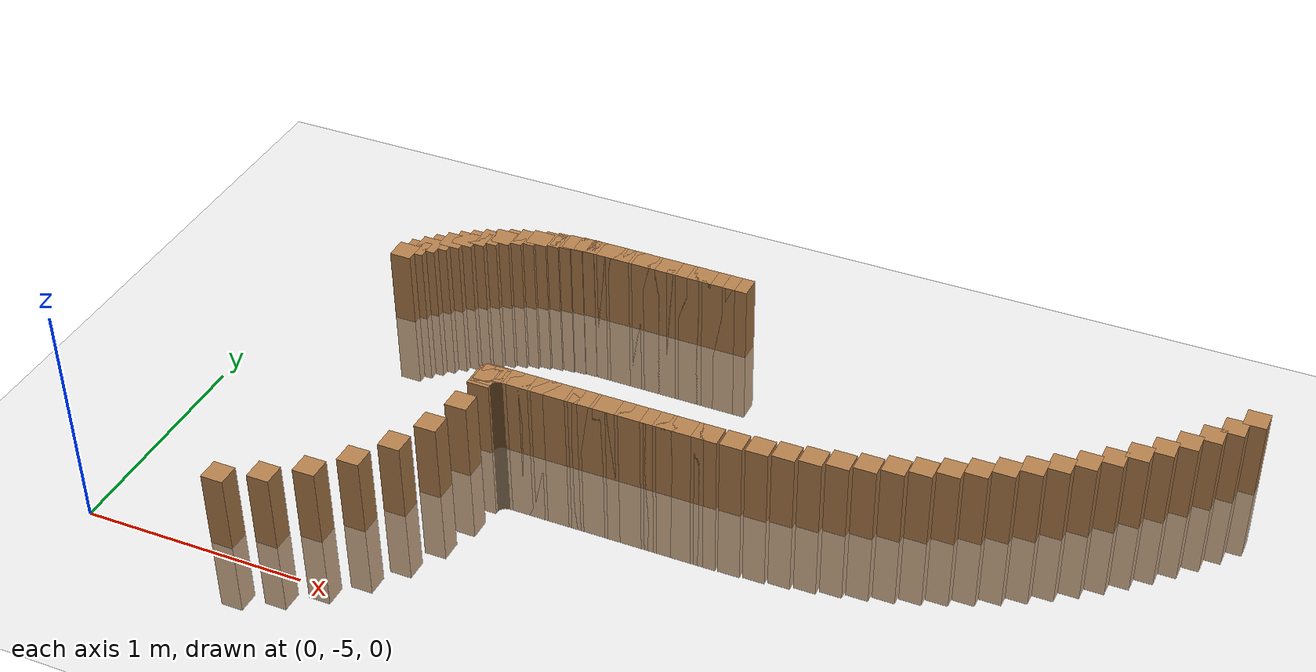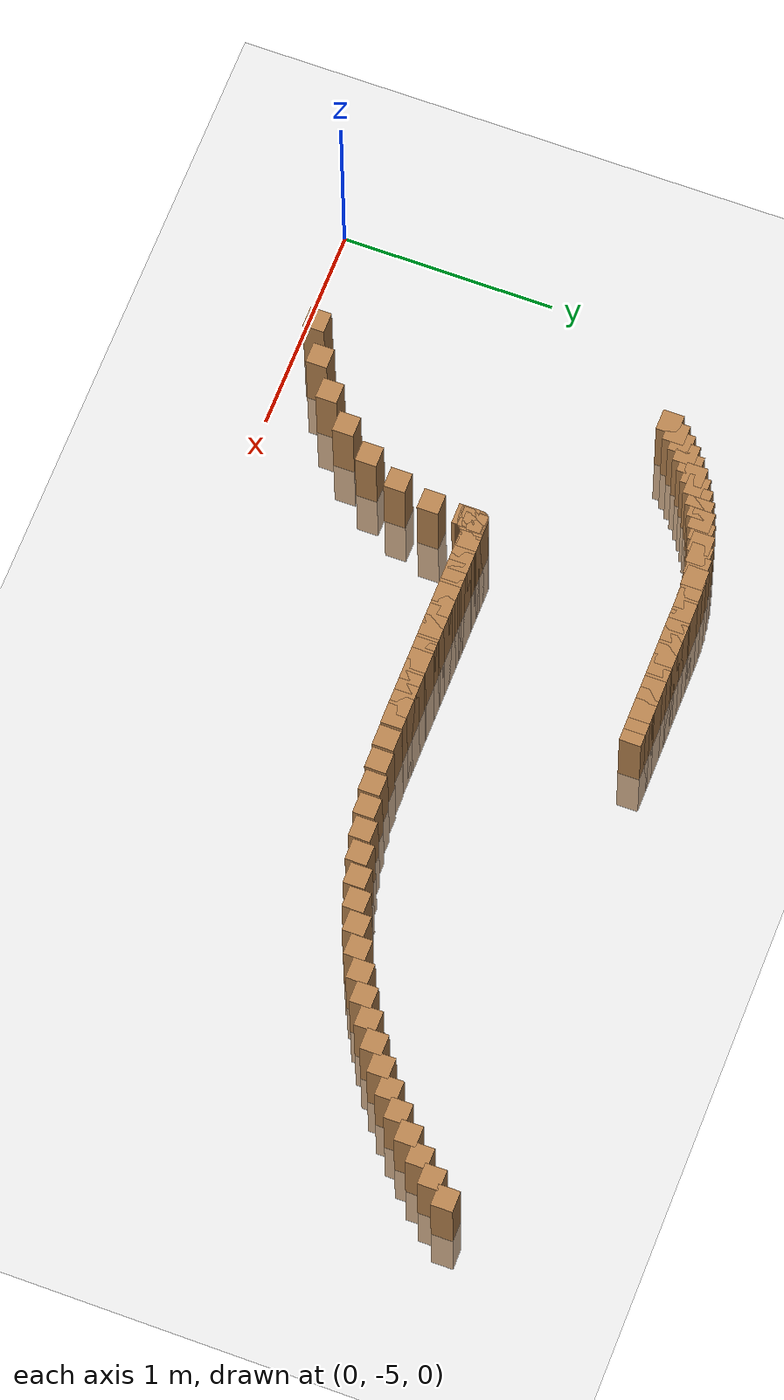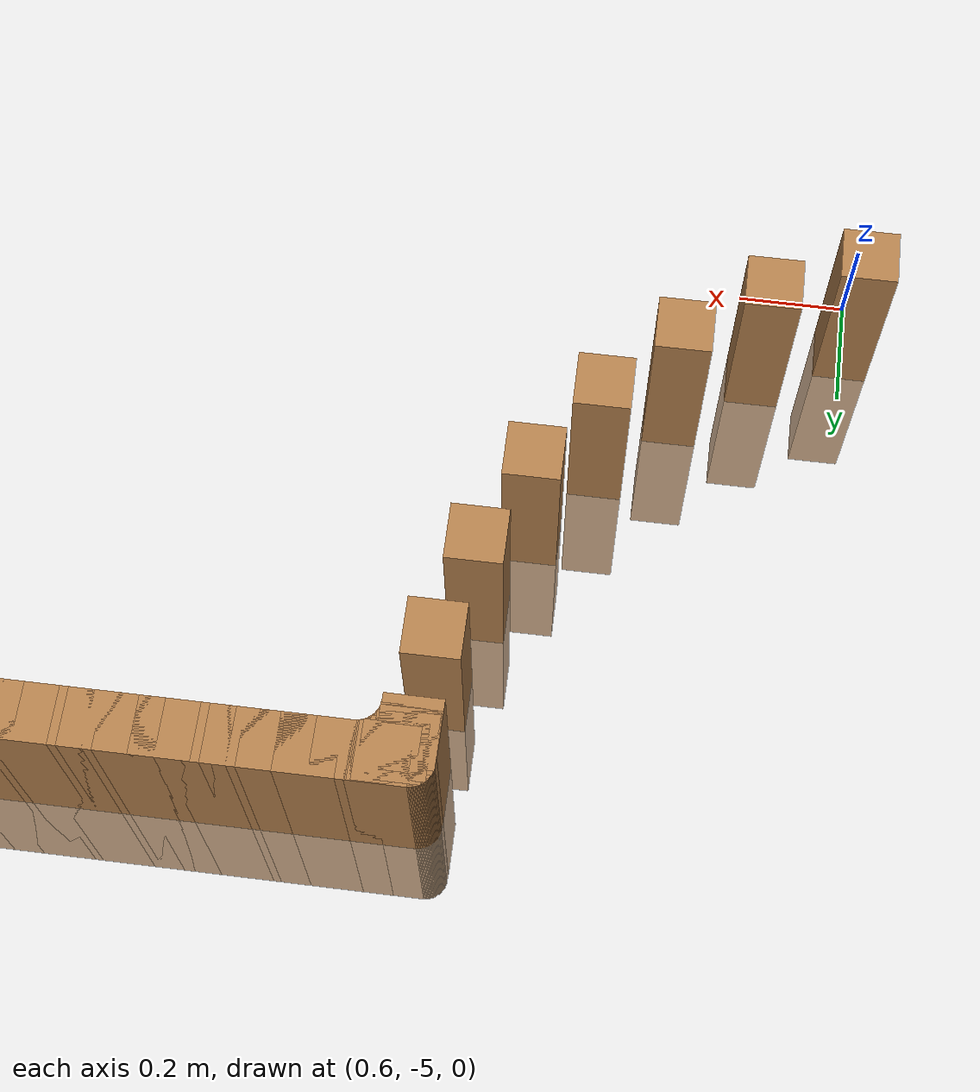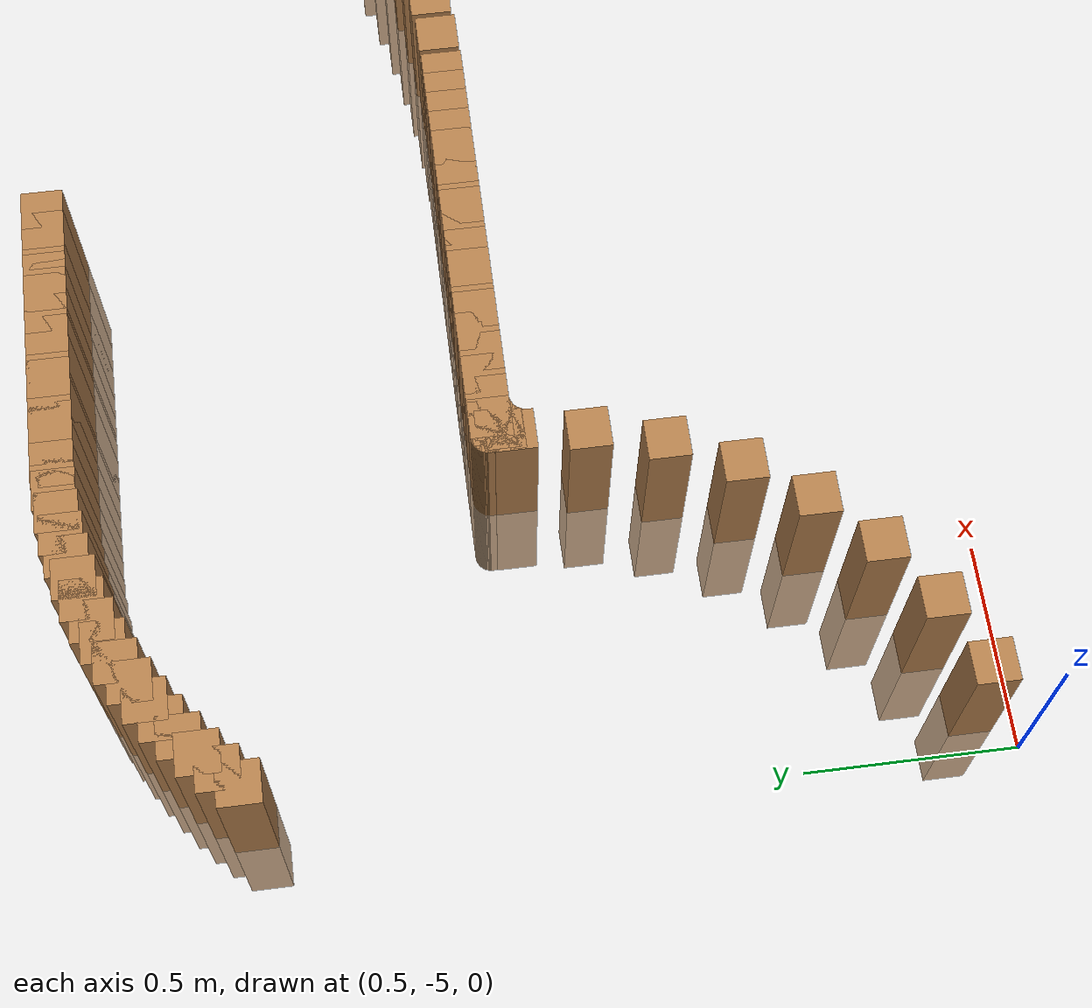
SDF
<sdf version="1.6">
 <world name="default">
  <model name="ground_plane">
   <static>1</static>
   <link name="link">
    <collision name="collision">
     <geometry><plane><normal>0 0 1</normal><size>100 100</size></plane></geometry>
     <surface><friction><ode><mu>100</mu><mu2>50</mu2></ode></friction></surface>
    </collision>
    <visual name="visual">
     <cast_shadows>0</cast_shadows>
     <geometry><plane><normal>0 0 1</normal><size>100 100</size></plane></geometry>
     <material>
      <script><uri>file://media/materials/scripts/gazebo.material</uri><name>Gazebo/Grey</name></script>
     </material>
    </visual>
   </link>
  </model>
  <model name="track">
   <link name="inner_464">
    <pose>0.531264 -3.245287 0.000000 0 -0 0</pose>
    <collision name="collision"><geometry><box><size>0.1 0.1 0.7</size></box></geometry></collision>
    <visual name="visual">
     <geometry><box><size>0.1 0.1 0.7</size></box></geometry>
     <material>
      <script><uri>file://media/materials/scripts/gazebo.material</uri><name>Gazebo/Wood</name></script>
     </material>
    </visual>
   </link>
   <link name="inner_465">
    <pose>0.568897 -3.203340 0.000000 0 -0 0</pose>
    <collision name="collision"><geometry><box><size>0.1 0.1 0.7</size></box></geometry></collision>
    <visual name="visual">
     <geometry><box><size>0.1 0.1 0.7</size></box></geometry>
     <material>
      <script><uri>file://media/materials/scripts/gazebo.material</uri><name>Gazebo/Wood</name></script>
     </material>
    </visual>
   </link>
   <link name="inner_466">
    <pose>0.608745 -3.163491 0.000000 0 -0 0</pose>
    <collision name="collision"><geometry><box><size>0.1 0.1 0.7</size></box></geometry></collision>
    <visual name="visual">
     <geometry><box><size>0.1 0.1 0.7</size></box></geometry>
     <material>
      <script><uri>file://media/materials/scripts/gazebo.material</uri><name>Gazebo/Wood</name></script>
     </material>
    </visual>
   </link>
   <link name="inner_467">
    <pose>0.650693 -3.125858 0.000000 0 -0 0</pose>
    <collision name="collision"><geometry><box><size>0.1 0.1 0.7</size></box></geometry></collision>
    <visual name="visual">
     <geometry><box><size>0.1 0.1 0.7</size></box></geometry>
     <material>
      <script><uri>file://media/materials/scripts/gazebo.material</uri><name>Gazebo/Wood</name></script>
     </material>
    </visual>
   </link>
   <link name="inner_468">
    <pose>0.694616 -3.090552 0.000000 0 -0 0</pose>
    <collision name="collision"><geometry><box><size>0.1 0.1 0.7</size></box></geometry></collision>
    <visual name="visual">
     <geometry><box><size>0.1 0.1 0.7</size></box></geometry>
     <material>
      <script><uri>file://media/materials/scripts/gazebo.material</uri><name>Gazebo/Wood</name></script>
     </material>
    </visual>
   </link>
   <link name="inner_469">
    <pose>0.740386 -3.057675 0.000000 0 -0 0</pose>
    <collision name="collision"><geometry><box><size>0.1 0.1 0.7</size></box></geometry></collision>
    <visual name="visual">
     <geometry><box><size>0.1 0.1 0.7</size></box></geometry>
     <material>
      <script><uri>file://media/materials/scripts/gazebo.material</uri><name>Gazebo/Wood</name></script>
     </material>
    </visual>
   </link>
   <link name="inner_470">
    <pose>0.787870 -3.027324 0.000000 0 -0 0</pose>
    <collision name="collision"><geometry><box><size>0.1 0.1 0.7</size></box></geometry></collision>
    <visual name="visual">
     <geometry><box><size>0.1 0.1 0.7</size></box></geometry>
     <material>
      <script><uri>file://media/materials/scripts/gazebo.material</uri><name>Gazebo/Wood</name></script>
     </material>
    </visual>
   </link>
   <link name="inner_471">
    <pose>0.836926 -2.999589 0.000000 0 -0 0</pose>
    <collision name="collision"><geometry><box><size>0.1 0.1 0.7</size></box></geometry></collision>
    <visual name="visual">
     <geometry><box><size>0.1 0.1 0.7</size></box></geometry>
     <material>
      <script><uri>file://media/materials/scripts/gazebo.material</uri><name>Gazebo/Wood</name></script>
     </material>
    </visual>
   </link>
   <link name="inner_472">
    <pose>0.887413 -2.974550 0.000000 0 -0 0</pose>
    <collision name="collision"><geometry><box><size>0.1 0.1 0.7</size></box></geometry></collision>
    <visual name="visual">
     <geometry><box><size>0.1 0.1 0.7</size></box></geometry>
     <material>
      <script><uri>file://media/materials/scripts/gazebo.material</uri><name>Gazebo/Wood</name></script>
     </material>
    </visual>
   </link>
   <link name="inner_473">
    <pose>0.939181 -2.952281 0.000000 0 -0 0</pose>
    <collision name="collision"><geometry><box><size>0.1 0.1 0.7</size></box></geometry></collision>
    <visual name="visual">
     <geometry><box><size>0.1 0.1 0.7</size></box></geometry>
     <material>
      <script><uri>file://media/materials/scripts/gazebo.material</uri><name>Gazebo/Wood</name></script>
     </material>
    </visual>
   </link>
   <link name="inner_474">
    <pose>0.992078 -2.932847 0.000000 0 -0 0</pose>
    <collision name="collision"><geometry><box><size>0.1 0.1 0.7</size></box></geometry></collision>
    <visual name="visual">
     <geometry><box><size>0.1 0.1 0.7</size></box></geometry>
     <material>
      <script><uri>file://media/materials/scripts/gazebo.material</uri><name>Gazebo/Wood</name></script>
     </material>
    </visual>
   </link>
   <link name="inner_475">
    <pose>1.045950 -2.916306 0.000000 0 -0 0</pose>
    <collision name="collision"><geometry><box><size>0.1 0.1 0.7</size></box></geometry></collision>
    <visual name="visual">
     <geometry><box><size>0.1 0.1 0.7</size></box></geometry>
     <material>
      <script><uri>file://media/materials/scripts/gazebo.material</uri><name>Gazebo/Wood</name></script>
     </material>
    </visual>
   </link>
   <link name="inner_476">
    <pose>1.100639 -2.902706 0.000000 0 -0 0</pose>
    <collision name="collision"><geometry><box><size>0.1 0.1 0.7</size></box></geometry></collision>
    <visual name="visual">
     <geometry><box><size>0.1 0.1 0.7</size></box></geometry>
     <material>
      <script><uri>file://media/materials/scripts/gazebo.material</uri><name>Gazebo/Wood</name></script>
     </material>
    </visual>
   </link>
   <link name="inner_477">
    <pose>1.155984 -2.892086 0.000000 0 -0 0</pose>
    <collision name="collision"><geometry><box><size>0.1 0.1 0.7</size></box></geometry></collision>
    <visual name="visual">
     <geometry><box><size>0.1 0.1 0.7</size></box></geometry>
     <material>
      <script><uri>file://media/materials/scripts/gazebo.material</uri><name>Gazebo/Wood</name></script>
     </material>
    </visual>
   </link>
   <link name="inner_478">
    <pose>1.211822 -2.884478 0.000000 0 -0 0</pose>
    <collision name="collision"><geometry><box><size>0.1 0.1 0.7</size></box></geometry></collision>
    <visual name="visual">
     <geometry><box><size>0.1 0.1 0.7</size></box></geometry>
     <material>
      <script><uri>file://media/materials/scripts/gazebo.material</uri><name>Gazebo/Wood</name></script>
     </material>
    </visual>
   </link>
   <link name="inner_479">
    <pose>1.267991 -2.879904 0.000000 0 -0 0</pose>
    <collision name="collision"><geometry><box><size>0.1 0.1 0.7</size></box></geometry></collision>
    <visual name="visual">
     <geometry><box><size>0.1 0.1 0.7</size></box></geometry>
     <material>
      <script><uri>file://media/materials/scripts/gazebo.material</uri><name>Gazebo/Wood</name></script>
     </material>
    </visual>
   </link>
   <link name="inner_480">
    <pose>1.324324 -2.878378 0.000000 0 -0 0</pose>
    <collision name="collision"><geometry><box><size>0.1 0.1 0.7</size></box></geometry></collision>
    <visual name="visual">
     <geometry><box><size>0.1 0.1 0.7</size></box></geometry>
     <material>
      <script><uri>file://media/materials/scripts/gazebo.material</uri><name>Gazebo/Wood</name></script>
     </material>
    </visual>
   </link>
   <link name="inner_481">
    <pose>1.381558 -2.878378 0.000000 0 -0 0</pose>
    <collision name="collision"><geometry><box><size>0.1 0.1 0.7</size></box></geometry></collision>
    <visual name="visual">
     <geometry><box><size>0.1 0.1 0.7</size></box></geometry>
     <material>
      <script><uri>file://media/materials/scripts/gazebo.material</uri><name>Gazebo/Wood</name></script>
     </material>
    </visual>
   </link>
   <link name="inner_482">
    <pose>1.438792 -2.878378 0.000000 0 -0 0</pose>
    <collision name="collision"><geometry><box><size>0.1 0.1 0.7</size></box></geometry></collision>
    <visual name="visual">
     <geometry><box><size>0.1 0.1 0.7</size></box></geometry>
     <material>
      <script><uri>file://media/materials/scripts/gazebo.material</uri><name>Gazebo/Wood</name></script>
     </material>
    </visual>
   </link>
   <link name="inner_483">
    <pose>1.496025 -2.878378 0.000000 0 -0 0</pose>
    <collision name="collision"><geometry><box><size>0.1 0.1 0.7</size></box></geometry></collision>
    <visual name="visual">
     <geometry><box><size>0.1 0.1 0.7</size></box></geometry>
     <material>
      <script><uri>file://media/materials/scripts/gazebo.material</uri><name>Gazebo/Wood</name></script>
     </material>
    </visual>
   </link>
   <link name="inner_484">
    <pose>1.553259 -2.878378 0.000000 0 -0 0</pose>
    <collision name="collision"><geometry><box><size>0.1 0.1 0.7</size></box></geometry></collision>
    <visual name="visual">
     <geometry><box><size>0.1 0.1 0.7</size></box></geometry>
     <material>
      <script><uri>file://media/materials/scripts/gazebo.material</uri><name>Gazebo/Wood</name></script>
     </material>
    </visual>
   </link>
   <link name="inner_485">
    <pose>1.610493 -2.878378 0.000000 0 -0 0</pose>
    <collision name="collision"><geometry><box><size>0.1 0.1 0.7</size></box></geometry></collision>
    <visual name="visual">
     <geometry><box><size>0.1 0.1 0.7</size></box></geometry>
     <material>
      <script><uri>file://media/materials/scripts/gazebo.material</uri><name>Gazebo/Wood</name></script>
     </material>
    </visual>
   </link>
   <link name="inner_486">
    <pose>1.667727 -2.878378 0.000000 0 -0 0</pose>
    <collision name="collision"><geometry><box><size>0.1 0.1 0.7</size></box></geometry></collision>
    <visual name="visual">
     <geometry><box><size>0.1 0.1 0.7</size></box></geometry>
     <material>
      <script><uri>file://media/materials/scripts/gazebo.material</uri><name>Gazebo/Wood</name></script>
     </material>
    </visual>
   </link>
   <link name="inner_487">
    <pose>1.724960 -2.878378 0.000000 0 -0 0</pose>
    <collision name="collision"><geometry><box><size>0.1 0.1 0.7</size></box></geometry></collision>
    <visual name="visual">
     <geometry><box><size>0.1 0.1 0.7</size></box></geometry>
     <material>
      <script><uri>file://media/materials/scripts/gazebo.material</uri><name>Gazebo/Wood</name></script>
     </material>
    </visual>
   </link>
   <link name="inner_488">
    <pose>1.782194 -2.878378 0.000000 0 -0 0</pose>
    <collision name="collision"><geometry><box><size>0.1 0.1 0.7</size></box></geometry></collision>
    <visual name="visual">
     <geometry><box><size>0.1 0.1 0.7</size></box></geometry>
     <material>
      <script><uri>file://media/materials/scripts/gazebo.material</uri><name>Gazebo/Wood</name></script>
     </material>
    </visual>
   </link>
   <link name="inner_489">
    <pose>1.839428 -2.878378 0.000000 0 -0 0</pose>
    <collision name="collision"><geometry><box><size>0.1 0.1 0.7</size></box></geometry></collision>
    <visual name="visual">
     <geometry><box><size>0.1 0.1 0.7</size></box></geometry>
     <material>
      <script><uri>file://media/materials/scripts/gazebo.material</uri><name>Gazebo/Wood</name></script>
     </material>
    </visual>
   </link>
   <link name="inner_490">
    <pose>1.896661 -2.878378 0.000000 0 -0 0</pose>
    <collision name="collision"><geometry><box><size>0.1 0.1 0.7</size></box></geometry></collision>
    <visual name="visual">
     <geometry><box><size>0.1 0.1 0.7</size></box></geometry>
     <material>
      <script><uri>file://media/materials/scripts/gazebo.material</uri><name>Gazebo/Wood</name></script>
     </material>
    </visual>
   </link>
   <link name="inner_491">
    <pose>1.953895 -2.878378 0.000000 0 -0 0</pose>
    <collision name="collision"><geometry><box><size>0.1 0.1 0.7</size></box></geometry></collision>
    <visual name="visual">
     <geometry><box><size>0.1 0.1 0.7</size></box></geometry>
     <material>
      <script><uri>file://media/materials/scripts/gazebo.material</uri><name>Gazebo/Wood</name></script>
     </material>
    </visual>
   </link>
   <link name="inner_492">
    <pose>2.011129 -2.878378 0.000000 0 -0 0</pose>
    <collision name="collision"><geometry><box><size>0.1 0.1 0.7</size></box></geometry></collision>
    <visual name="visual">
     <geometry><box><size>0.1 0.1 0.7</size></box></geometry>
     <material>
      <script><uri>file://media/materials/scripts/gazebo.material</uri><name>Gazebo/Wood</name></script>
     </material>
    </visual>
   </link>
   <link name="outer_445">
    <pose>0.599129 -4.896707 0.000000 0 -0 0</pose>
    <collision name="collision"><geometry><box><size>0.1 0.1 0.7</size></box></geometry></collision>
    <visual name="visual">
     <geometry><box><size>0.1 0.1 0.7</size></box></geometry>
     <material>
      <script><uri>file://media/materials/scripts/gazebo.material</uri><name>Gazebo/Wood</name></script>
     </material>
    </visual>
   </link>
   <link name="outer_446">
    <pose>0.763514 -4.820053 0.000000 0 -0 0</pose>
    <collision name="collision"><geometry><box><size>0.1 0.1 0.7</size></box></geometry></collision>
    <visual name="visual">
     <geometry><box><size>0.1 0.1 0.7</size></box></geometry>
     <material>
      <script><uri>file://media/materials/scripts/gazebo.material</uri><name>Gazebo/Wood</name></script>
     </material>
    </visual>
   </link>
   <link name="outer_447">
    <pose>0.912090 -4.716019 0.000000 0 -0 0</pose>
    <collision name="collision"><geometry><box><size>0.1 0.1 0.7</size></box></geometry></collision>
    <visual name="visual">
     <geometry><box><size>0.1 0.1 0.7</size></box></geometry>
     <material>
      <script><uri>file://media/materials/scripts/gazebo.material</uri><name>Gazebo/Wood</name></script>
     </material>
    </visual>
   </link>
   <link name="outer_448">
    <pose>1.040344 -4.587765 0.000000 0 -0 0</pose>
    <collision name="collision"><geometry><box><size>0.1 0.1 0.7</size></box></geometry></collision>
    <visual name="visual">
     <geometry><box><size>0.1 0.1 0.7</size></box></geometry>
     <material>
      <script><uri>file://media/materials/scripts/gazebo.material</uri><name>Gazebo/Wood</name></script>
     </material>
    </visual>
   </link>
   <link name="outer_449">
    <pose>1.144378 -4.439189 0.000000 0 -0 0</pose>
    <collision name="collision"><geometry><box><size>0.1 0.1 0.7</size></box></geometry></collision>
    <visual name="visual">
     <geometry><box><size>0.1 0.1 0.7</size></box></geometry>
     <material>
      <script><uri>file://media/materials/scripts/gazebo.material</uri><name>Gazebo/Wood</name></script>
     </material>
    </visual>
   </link>
   <link name="outer_450">
    <pose>1.221032 -4.274805 0.000000 0 -0 0</pose>
    <collision name="collision"><geometry><box><size>0.1 0.1 0.7</size></box></geometry></collision>
    <visual name="visual">
     <geometry><box><size>0.1 0.1 0.7</size></box></geometry>
     <material>
      <script><uri>file://media/materials/scripts/gazebo.material</uri><name>Gazebo/Wood</name></script>
     </material>
    </visual>
   </link>
   <link name="outer_451">
    <pose>1.267976 -4.099607 0.000000 0 -0 0</pose>
    <collision name="collision"><geometry><box><size>0.1 0.1 0.7</size></box></geometry></collision>
    <visual name="visual">
     <geometry><box><size>0.1 0.1 0.7</size></box></geometry>
     <material>
      <script><uri>file://media/materials/scripts/gazebo.material</uri><name>Gazebo/Wood</name></script>
     </material>
    </visual>
   </link>
   <link name="outer_452">
    <pose>1.283514 -3.929730 0.000000 0 -0 0</pose>
    <collision name="collision"><geometry><box><size>0.1 0.1 0.7</size></box></geometry></collision>
    <visual name="visual">
     <geometry><box><size>0.1 0.1 0.7</size></box></geometry>
     <material>
      <script><uri>file://media/materials/scripts/gazebo.material</uri><name>Gazebo/Wood</name></script>
     </material>
    </visual>
   </link>
   <link name="outer_453">
    <pose>1.284292 -3.913184 0.000000 0 -0 0</pose>
    <collision name="collision"><geometry><box><size>0.1 0.1 0.7</size></box></geometry></collision>
    <visual name="visual">
     <geometry><box><size>0.1 0.1 0.7</size></box></geometry>
     <material>
      <script><uri>file://media/materials/scripts/gazebo.material</uri><name>Gazebo/Wood</name></script>
     </material>
    </visual>
   </link>
   <link name="outer_454">
    <pose>1.284318 -3.912630 0.000000 0 -0 0</pose>
    <collision name="collision"><geometry><box><size>0.1 0.1 0.7</size></box></geometry></collision>
    <visual name="visual">
     <geometry><box><size>0.1 0.1 0.7</size></box></geometry>
     <material>
      <script><uri>file://media/materials/scripts/gazebo.material</uri><name>Gazebo/Wood</name></script>
     </material>
    </visual>
   </link>
   <link name="outer_455">
    <pose>1.284461 -3.910474 0.000000 0 -0 0</pose>
    <collision name="collision"><geometry><box><size>0.1 0.1 0.7</size></box></geometry></collision>
    <visual name="visual">
     <geometry><box><size>0.1 0.1 0.7</size></box></geometry>
     <material>
      <script><uri>file://media/materials/scripts/gazebo.material</uri><name>Gazebo/Wood</name></script>
     </material>
    </visual>
   </link>
   <link name="outer_456">
    <pose>1.284721 -3.909425 0.000000 0 -0 0</pose>
    <collision name="collision"><geometry><box><size>0.1 0.1 0.7</size></box></geometry></collision>
    <visual name="visual">
     <geometry><box><size>0.1 0.1 0.7</size></box></geometry>
     <material>
      <script><uri>file://media/materials/scripts/gazebo.material</uri><name>Gazebo/Wood</name></script>
     </material>
    </visual>
   </link>
   <link name="outer_457">
    <pose>1.285636 -3.906245 0.000000 0 -0 0</pose>
    <collision name="collision"><geometry><box><size>0.1 0.1 0.7</size></box></geometry></collision>
    <visual name="visual">
     <geometry><box><size>0.1 0.1 0.7</size></box></geometry>
     <material>
      <script><uri>file://media/materials/scripts/gazebo.material</uri><name>Gazebo/Wood</name></script>
     </material>
    </visual>
   </link>
   <link name="outer_458">
    <pose>1.286663 -3.903103 0.000000 0 -0 0</pose>
    <collision name="collision"><geometry><box><size>0.1 0.1 0.7</size></box></geometry></collision>
    <visual name="visual">
     <geometry><box><size>0.1 0.1 0.7</size></box></geometry>
     <material>
      <script><uri>file://media/materials/scripts/gazebo.material</uri><name>Gazebo/Wood</name></script>
     </material>
    </visual>
   </link>
   <link name="outer_459">
    <pose>1.287531 -3.901896 0.000000 0 -0 0</pose>
    <collision name="collision"><geometry><box><size>0.1 0.1 0.7</size></box></geometry></collision>
    <visual name="visual">
     <geometry><box><size>0.1 0.1 0.7</size></box></geometry>
     <material>
      <script><uri>file://media/materials/scripts/gazebo.material</uri><name>Gazebo/Wood</name></script>
     </material>
    </visual>
   </link>
   <link name="outer_460">
    <pose>1.288506 -3.899929 0.000000 0 -0 0</pose>
    <collision name="collision"><geometry><box><size>0.1 0.1 0.7</size></box></geometry></collision>
    <visual name="visual">
     <geometry><box><size>0.1 0.1 0.7</size></box></geometry>
     <material>
      <script><uri>file://media/materials/scripts/gazebo.material</uri><name>Gazebo/Wood</name></script>
     </material>
    </visual>
   </link>
   <link name="outer_461">
    <pose>1.289587 -3.898018 0.000000 0 -0 0</pose>
    <collision name="collision"><geometry><box><size>0.1 0.1 0.7</size></box></geometry></collision>
    <visual name="visual">
     <geometry><box><size>0.1 0.1 0.7</size></box></geometry>
     <material>
      <script><uri>file://media/materials/scripts/gazebo.material</uri><name>Gazebo/Wood</name></script>
     </material>
    </visual>
   </link>
   <link name="outer_462">
    <pose>1.290769 -3.896168 0.000000 0 -0 0</pose>
    <collision name="collision"><geometry><box><size>0.1 0.1 0.7</size></box></geometry></collision>
    <visual name="visual">
     <geometry><box><size>0.1 0.1 0.7</size></box></geometry>
     <material>
      <script><uri>file://media/materials/scripts/gazebo.material</uri><name>Gazebo/Wood</name></script>
     </material>
    </visual>
   </link>
   <link name="outer_463">
    <pose>1.292050 -3.894385 0.000000 0 -0 0</pose>
    <collision name="collision"><geometry><box><size>0.1 0.1 0.7</size></box></geometry></collision>
    <visual name="visual">
     <geometry><box><size>0.1 0.1 0.7</size></box></geometry>
     <material>
      <script><uri>file://media/materials/scripts/gazebo.material</uri><name>Gazebo/Wood</name></script>
     </material>
    </visual>
   </link>
   <link name="outer_464">
    <pose>1.293426 -3.892674 0.000000 0 -0 0</pose>
    <collision name="collision"><geometry><box><size>0.1 0.1 0.7</size></box></geometry></collision>
    <visual name="visual">
     <geometry><box><size>0.1 0.1 0.7</size></box></geometry>
     <material>
      <script><uri>file://media/materials/scripts/gazebo.material</uri><name>Gazebo/Wood</name></script>
     </material>
    </visual>
   </link>
   <link name="outer_465">
    <pose>1.294892 -3.891039 0.000000 0 -0 0</pose>
    <collision name="collision"><geometry><box><size>0.1 0.1 0.7</size></box></geometry></collision>
    <visual name="visual">
     <geometry><box><size>0.1 0.1 0.7</size></box></geometry>
     <material>
      <script><uri>file://media/materials/scripts/gazebo.material</uri><name>Gazebo/Wood</name></script>
     </material>
    </visual>
   </link>
   <link name="outer_466">
    <pose>1.296445 -3.889487 0.000000 0 -0 0</pose>
    <collision name="collision"><geometry><box><size>0.1 0.1 0.7</size></box></geometry></collision>
    <visual name="visual">
     <geometry><box><size>0.1 0.1 0.7</size></box></geometry>
     <material>
      <script><uri>file://media/materials/scripts/gazebo.material</uri><name>Gazebo/Wood</name></script>
     </material>
    </visual>
   </link>
   <link name="outer_467">
    <pose>1.298079 -3.888020 0.000000 0 -0 0</pose>
    <collision name="collision"><geometry><box><size>0.1 0.1 0.7</size></box></geometry></collision>
    <visual name="visual">
     <geometry><box><size>0.1 0.1 0.7</size></box></geometry>
     <material>
      <script><uri>file://media/materials/scripts/gazebo.material</uri><name>Gazebo/Wood</name></script>
     </material>
    </visual>
   </link>
   <link name="outer_468">
    <pose>1.299790 -3.886645 0.000000 0 -0 0</pose>
    <collision name="collision"><geometry><box><size>0.1 0.1 0.7</size></box></geometry></collision>
    <visual name="visual">
     <geometry><box><size>0.1 0.1 0.7</size></box></geometry>
     <material>
      <script><uri>file://media/materials/scripts/gazebo.material</uri><name>Gazebo/Wood</name></script>
     </material>
    </visual>
   </link>
   <link name="outer_469">
    <pose>1.301573 -3.885364 0.000000 0 -0 0</pose>
    <collision name="collision"><geometry><box><size>0.1 0.1 0.7</size></box></geometry></collision>
    <visual name="visual">
     <geometry><box><size>0.1 0.1 0.7</size></box></geometry>
     <material>
      <script><uri>file://media/materials/scripts/gazebo.material</uri><name>Gazebo/Wood</name></script>
     </material>
    </visual>
   </link>
   <link name="outer_470">
    <pose>1.303423 -3.884181 0.000000 0 -0 0</pose>
    <collision name="collision"><geometry><box><size>0.1 0.1 0.7</size></box></geometry></collision>
    <visual name="visual">
     <geometry><box><size>0.1 0.1 0.7</size></box></geometry>
     <material>
      <script><uri>file://media/materials/scripts/gazebo.material</uri><name>Gazebo/Wood</name></script>
     </material>
    </visual>
   </link>
   <link name="outer_471">
    <pose>1.305335 -3.883101 0.000000 0 -0 0</pose>
    <collision name="collision"><geometry><box><size>0.1 0.1 0.7</size></box></geometry></collision>
    <visual name="visual">
     <geometry><box><size>0.1 0.1 0.7</size></box></geometry>
     <material>
      <script><uri>file://media/materials/scripts/gazebo.material</uri><name>Gazebo/Wood</name></script>
     </material>
    </visual>
   </link>
   <link name="outer_472">
    <pose>1.307302 -3.882125 0.000000 0 -0 0</pose>
    <collision name="collision"><geometry><box><size>0.1 0.1 0.7</size></box></geometry></collision>
    <visual name="visual">
     <geometry><box><size>0.1 0.1 0.7</size></box></geometry>
     <material>
      <script><uri>file://media/materials/scripts/gazebo.material</uri><name>Gazebo/Wood</name></script>
     </material>
    </visual>
   </link>
   <link name="outer_473">
    <pose>1.309319 -3.881258 0.000000 0 -0 0</pose>
    <collision name="collision"><geometry><box><size>0.1 0.1 0.7</size></box></geometry></collision>
    <visual name="visual">
     <geometry><box><size>0.1 0.1 0.7</size></box></geometry>
     <material>
      <script><uri>file://media/materials/scripts/gazebo.material</uri><name>Gazebo/Wood</name></script>
     </material>
    </visual>
   </link>
   <link name="outer_474">
    <pose>1.311380 -3.880501 0.000000 0 -0 0</pose>
    <collision name="collision"><geometry><box><size>0.1 0.1 0.7</size></box></geometry></collision>
    <visual name="visual">
     <geometry><box><size>0.1 0.1 0.7</size></box></geometry>
     <material>
      <script><uri>file://media/materials/scripts/gazebo.material</uri><name>Gazebo/Wood</name></script>
     </material>
    </visual>
   </link>
   <link name="outer_475">
    <pose>1.313479 -3.879856 0.000000 0 -0 0</pose>
    <collision name="collision"><geometry><box><size>0.1 0.1 0.7</size></box></geometry></collision>
    <visual name="visual">
     <geometry><box><size>0.1 0.1 0.7</size></box></geometry>
     <material>
      <script><uri>file://media/materials/scripts/gazebo.material</uri><name>Gazebo/Wood</name></script>
     </material>
    </visual>
   </link>
   <link name="outer_476">
    <pose>1.315609 -3.879326 0.000000 0 -0 0</pose>
    <collision name="collision"><geometry><box><size>0.1 0.1 0.7</size></box></geometry></collision>
    <visual name="visual">
     <geometry><box><size>0.1 0.1 0.7</size></box></geometry>
     <material>
      <script><uri>file://media/materials/scripts/gazebo.material</uri><name>Gazebo/Wood</name></script>
     </material>
    </visual>
   </link>
   <link name="outer_477">
    <pose>1.317766 -3.878912 0.000000 0 -0 0</pose>
    <collision name="collision"><geometry><box><size>0.1 0.1 0.7</size></box></geometry></collision>
    <visual name="visual">
     <geometry><box><size>0.1 0.1 0.7</size></box></geometry>
     <material>
      <script><uri>file://media/materials/scripts/gazebo.material</uri><name>Gazebo/Wood</name></script>
     </material>
    </visual>
   </link>
   <link name="outer_478">
    <pose>1.319941 -3.878616 0.000000 0 -0 0</pose>
    <collision name="collision"><geometry><box><size>0.1 0.1 0.7</size></box></geometry></collision>
    <visual name="visual">
     <geometry><box><size>0.1 0.1 0.7</size></box></geometry>
     <material>
      <script><uri>file://media/materials/scripts/gazebo.material</uri><name>Gazebo/Wood</name></script>
     </material>
    </visual>
   </link>
   <link name="outer_479">
    <pose>1.322130 -3.878438 0.000000 0 -0 0</pose>
    <collision name="collision"><geometry><box><size>0.1 0.1 0.7</size></box></geometry></collision>
    <visual name="visual">
     <geometry><box><size>0.1 0.1 0.7</size></box></geometry>
     <material>
      <script><uri>file://media/materials/scripts/gazebo.material</uri><name>Gazebo/Wood</name></script>
     </material>
    </visual>
   </link>
   <link name="outer_480">
    <pose>1.324324 -3.878378 0.000000 0 -0 0</pose>
    <collision name="collision"><geometry><box><size>0.1 0.1 0.7</size></box></geometry></collision>
    <visual name="visual">
     <geometry><box><size>0.1 0.1 0.7</size></box></geometry>
     <material>
      <script><uri>file://media/materials/scripts/gazebo.material</uri><name>Gazebo/Wood</name></script>
     </material>
    </visual>
   </link>
   <link name="outer_481">
    <pose>1.381558 -3.878378 0.000000 0 -0 0</pose>
    <collision name="collision"><geometry><box><size>0.1 0.1 0.7</size></box></geometry></collision>
    <visual name="visual">
     <geometry><box><size>0.1 0.1 0.7</size></box></geometry>
     <material>
      <script><uri>file://media/materials/scripts/gazebo.material</uri><name>Gazebo/Wood</name></script>
     </material>
    </visual>
   </link>
   <link name="outer_482">
    <pose>1.438792 -3.878378 0.000000 0 -0 0</pose>
    <collision name="collision"><geometry><box><size>0.1 0.1 0.7</size></box></geometry></collision>
    <visual name="visual">
     <geometry><box><size>0.1 0.1 0.7</size></box></geometry>
     <material>
      <script><uri>file://media/materials/scripts/gazebo.material</uri><name>Gazebo/Wood</name></script>
     </material>
    </visual>
   </link>
   <link name="outer_483">
    <pose>1.496025 -3.878378 0.000000 0 -0 0</pose>
    <collision name="collision"><geometry><box><size>0.1 0.1 0.7</size></box></geometry></collision>
    <visual name="visual">
     <geometry><box><size>0.1 0.1 0.7</size></box></geometry>
     <material>
      <script><uri>file://media/materials/scripts/gazebo.material</uri><name>Gazebo/Wood</name></script>
     </material>
    </visual>
   </link>
   <link name="outer_484">
    <pose>1.553259 -3.878378 0.000000 0 -0 0</pose>
    <collision name="collision"><geometry><box><size>0.1 0.1 0.7</size></box></geometry></collision>
    <visual name="visual">
     <geometry><box><size>0.1 0.1 0.7</size></box></geometry>
     <material>
      <script><uri>file://media/materials/scripts/gazebo.material</uri><name>Gazebo/Wood</name></script>
     </material>
    </visual>
   </link>
   <link name="outer_485">
    <pose>1.610493 -3.878378 0.000000 0 -0 0</pose>
    <collision name="collision"><geometry><box><size>0.1 0.1 0.7</size></box></geometry></collision>
    <visual name="visual">
     <geometry><box><size>0.1 0.1 0.7</size></box></geometry>
     <material>
      <script><uri>file://media/materials/scripts/gazebo.material</uri><name>Gazebo/Wood</name></script>
     </material>
    </visual>
   </link>
   <link name="outer_486">
    <pose>1.667727 -3.878378 0.000000 0 -0 0</pose>
    <collision name="collision"><geometry><box><size>0.1 0.1 0.7</size></box></geometry></collision>
    <visual name="visual">
     <geometry><box><size>0.1 0.1 0.7</size></box></geometry>
     <material>
      <script><uri>file://media/materials/scripts/gazebo.material</uri><name>Gazebo/Wood</name></script>
     </material>
    </visual>
   </link>
   <link name="outer_487">
    <pose>1.724960 -3.878378 0.000000 0 -0 0</pose>
    <collision name="collision"><geometry><box><size>0.1 0.1 0.7</size></box></geometry></collision>
    <visual name="visual">
     <geometry><box><size>0.1 0.1 0.7</size></box></geometry>
     <material>
      <script><uri>file://media/materials/scripts/gazebo.material</uri><name>Gazebo/Wood</name></script>
     </material>
    </visual>
   </link>
   <link name="outer_488">
    <pose>1.782194 -3.878378 0.000000 0 -0 0</pose>
    <collision name="collision"><geometry><box><size>0.1 0.1 0.7</size></box></geometry></collision>
    <visual name="visual">
     <geometry><box><size>0.1 0.1 0.7</size></box></geometry>
     <material>
      <script><uri>file://media/materials/scripts/gazebo.material</uri><name>Gazebo/Wood</name></script>
     </material>
    </visual>
   </link>
   <link name="outer_489">
    <pose>1.839428 -3.878378 0.000000 0 -0 0</pose>
    <collision name="collision"><geometry><box><size>0.1 0.1 0.7</size></box></geometry></collision>
    <visual name="visual">
     <geometry><box><size>0.1 0.1 0.7</size></box></geometry>
     <material>
      <script><uri>file://media/materials/scripts/gazebo.material</uri><name>Gazebo/Wood</name></script>
     </material>
    </visual>
   </link>
   <link name="outer_490">
    <pose>1.896661 -3.878378 0.000000 0 -0 0</pose>
    <collision name="collision"><geometry><box><size>0.1 0.1 0.7</size></box></geometry></collision>
    <visual name="visual">
     <geometry><box><size>0.1 0.1 0.7</size></box></geometry>
     <material>
      <script><uri>file://media/materials/scripts/gazebo.material</uri><name>Gazebo/Wood</name></script>
     </material>
    </visual>
   </link>
   <link name="outer_491">
    <pose>1.953895 -3.878378 0.000000 0 -0 0</pose>
    <collision name="collision"><geometry><box><size>0.1 0.1 0.7</size></box></geometry></collision>
    <visual name="visual">
     <geometry><box><size>0.1 0.1 0.7</size></box></geometry>
     <material>
      <script><uri>file://media/materials/scripts/gazebo.material</uri><name>Gazebo/Wood</name></script>
     </material>
    </visual>
   </link>
   <link name="outer_492">
    <pose>2.011129 -3.878378 0.000000 0 -0 0</pose>
    <collision name="collision"><geometry><box><size>0.1 0.1 0.7</size></box></geometry></collision>
    <visual name="visual">
     <geometry><box><size>0.1 0.1 0.7</size></box></geometry>
     <material>
      <script><uri>file://media/materials/scripts/gazebo.material</uri><name>Gazebo/Wood</name></script>
     </material>
    </visual>
   </link>
   <link name="outer_493">
    <pose>2.068362 -3.878378 0.000000 0 -0 0</pose>
    <collision name="collision"><geometry><box><size>0.1 0.1 0.7</size></box></geometry></collision>
    <visual name="visual">
     <geometry><box><size>0.1 0.1 0.7</size></box></geometry>
     <material>
      <script><uri>file://media/materials/scripts/gazebo.material</uri><name>Gazebo/Wood</name></script>
     </material>
    </visual>
   </link>
   <link name="outer_494">
    <pose>2.125596 -3.878378 0.000000 0 -0 0</pose>
    <collision name="collision"><geometry><box><size>0.1 0.1 0.7</size></box></geometry></collision>
    <visual name="visual">
     <geometry><box><size>0.1 0.1 0.7</size></box></geometry>
     <material>
      <script><uri>file://media/materials/scripts/gazebo.material</uri><name>Gazebo/Wood</name></script>
     </material>
    </visual>
   </link>
   <link name="outer_495">
    <pose>2.182830 -3.878378 0.000000 0 -0 0</pose>
    <collision name="collision"><geometry><box><size>0.1 0.1 0.7</size></box></geometry></collision>
    <visual name="visual">
     <geometry><box><size>0.1 0.1 0.7</size></box></geometry>
     <material>
      <script><uri>file://media/materials/scripts/gazebo.material</uri><name>Gazebo/Wood</name></script>
     </material>
    </visual>
   </link>
   <link name="outer_496">
    <pose>2.240064 -3.878378 0.000000 0 -0 0</pose>
    <collision name="collision"><geometry><box><size>0.1 0.1 0.7</size></box></geometry></collision>
    <visual name="visual">
     <geometry><box><size>0.1 0.1 0.7</size></box></geometry>
     <material>
      <script><uri>file://media/materials/scripts/gazebo.material</uri><name>Gazebo/Wood</name></script>
     </material>
    </visual>
   </link>
   <link name="outer_497">
    <pose>2.297297 -3.878378 0.000000 0 -0 0</pose>
    <collision name="collision"><geometry><box><size>0.1 0.1 0.7</size></box></geometry></collision>
    <visual name="visual">
     <geometry><box><size>0.1 0.1 0.7</size></box></geometry>
     <material>
      <script><uri>file://media/materials/scripts/gazebo.material</uri><name>Gazebo/Wood</name></script>
     </material>
    </visual>
   </link>
   <link name="outer_498">
    <pose>2.408114 -3.875960 0.000000 0 -0 0</pose>
    <collision name="collision"><geometry><box><size>0.1 0.1 0.7</size></box></geometry></collision>
    <visual name="visual">
     <geometry><box><size>0.1 0.1 0.7</size></box></geometry>
     <material>
      <script><uri>file://media/materials/scripts/gazebo.material</uri><name>Gazebo/Wood</name></script>
     </material>
    </visual>
   </link>
   <link name="outer_499">
    <pose>2.518720 -3.868711 0.000000 0 -0 0</pose>
    <collision name="collision"><geometry><box><size>0.1 0.1 0.7</size></box></geometry></collision>
    <visual name="visual">
     <geometry><box><size>0.1 0.1 0.7</size></box></geometry>
     <material>
      <script><uri>file://media/materials/scripts/gazebo.material</uri><name>Gazebo/Wood</name></script>
     </material>
    </visual>
   </link>
   <link name="outer_500">
    <pose>2.628904 -3.856644 0.000000 0 -0 0</pose>
    <collision name="collision"><geometry><box><size>0.1 0.1 0.7</size></box></geometry></collision>
    <visual name="visual">
     <geometry><box><size>0.1 0.1 0.7</size></box></geometry>
     <material>
      <script><uri>file://media/materials/scripts/gazebo.material</uri><name>Gazebo/Wood</name></script>
     </material>
    </visual>
   </link>
   <link name="outer_501">
    <pose>2.738458 -3.839782 0.000000 0 -0 0</pose>
    <collision name="collision"><geometry><box><size>0.1 0.1 0.7</size></box></geometry></collision>
    <visual name="visual">
     <geometry><box><size>0.1 0.1 0.7</size></box></geometry>
     <material>
      <script><uri>file://media/materials/scripts/gazebo.material</uri><name>Gazebo/Wood</name></script>
     </material>
    </visual>
   </link>
   <link name="outer_502">
    <pose>2.847171 -3.818157 0.000000 0 -0 0</pose>
    <collision name="collision"><geometry><box><size>0.1 0.1 0.7</size></box></geometry></collision>
    <visual name="visual">
     <geometry><box><size>0.1 0.1 0.7</size></box></geometry>
     <material>
      <script><uri>file://media/materials/scripts/gazebo.material</uri><name>Gazebo/Wood</name></script>
     </material>
    </visual>
   </link>
   <link name="outer_503">
    <pose>2.954838 -3.791812 0.000000 0 -0 0</pose>
    <collision name="collision"><geometry><box><size>0.1 0.1 0.7</size></box></geometry></collision>
    <visual name="visual">
     <geometry><box><size>0.1 0.1 0.7</size></box></geometry>
     <material>
      <script><uri>file://media/materials/scripts/gazebo.material</uri><name>Gazebo/Wood</name></script>
     </material>
    </visual>
   </link>
   <link name="outer_504">
    <pose>3.061253 -3.760794 0.000000 0 -0 0</pose>
    <collision name="collision"><geometry><box><size>0.1 0.1 0.7</size></box></geometry></collision>
    <visual name="visual">
     <geometry><box><size>0.1 0.1 0.7</size></box></geometry>
     <material>
      <script><uri>file://media/materials/scripts/gazebo.material</uri><name>Gazebo/Wood</name></script>
     </material>
    </visual>
   </link>
   <link name="outer_505">
    <pose>3.166213 -3.725165 0.000000 0 -0 0</pose>
    <collision name="collision"><geometry><box><size>0.1 0.1 0.7</size></box></geometry></collision>
    <visual name="visual">
     <geometry><box><size>0.1 0.1 0.7</size></box></geometry>
     <material>
      <script><uri>file://media/materials/scripts/gazebo.material</uri><name>Gazebo/Wood</name></script>
     </material>
    </visual>
   </link>
   <link name="outer_506">
    <pose>3.269520 -3.684991 0.000000 0 -0 0</pose>
    <collision name="collision"><geometry><box><size>0.1 0.1 0.7</size></box></geometry></collision>
    <visual name="visual">
     <geometry><box><size>0.1 0.1 0.7</size></box></geometry>
     <material>
      <script><uri>file://media/materials/scripts/gazebo.material</uri><name>Gazebo/Wood</name></script>
     </material>
    </visual>
   </link>
   <link name="outer_507">
    <pose>3.370976 -3.640350 0.000000 0 -0 0</pose>
    <collision name="collision"><geometry><box><size>0.1 0.1 0.7</size></box></geometry></collision>
    <visual name="visual">
     <geometry><box><size>0.1 0.1 0.7</size></box></geometry>
     <material>
      <script><uri>file://media/materials/scripts/gazebo.material</uri><name>Gazebo/Wood</name></script>
     </material>
    </visual>
   </link>
   <link name="outer_508">
    <pose>3.470388 -3.591325 0.000000 0 -0 0</pose>
    <collision name="collision"><geometry><box><size>0.1 0.1 0.7</size></box></geometry></collision>
    <visual name="visual">
     <geometry><box><size>0.1 0.1 0.7</size></box></geometry>
     <material>
      <script><uri>file://media/materials/scripts/gazebo.material</uri><name>Gazebo/Wood</name></script>
     </material>
    </visual>
   </link>
   <link name="outer_509">
    <pose>3.567568 -3.538010 0.000000 0 -0 0</pose>
    <collision name="collision"><geometry><box><size>0.1 0.1 0.7</size></box></geometry></collision>
    <visual name="visual">
     <geometry><box><size>0.1 0.1 0.7</size></box></geometry>
     <material>
      <script><uri>file://media/materials/scripts/gazebo.material</uri><name>Gazebo/Wood</name></script>
     </material>
    </visual>
   </link>
   <link name="outer_510">
    <pose>3.662329 -3.480508 0.000000 0 -0 0</pose>
    <collision name="collision"><geometry><box><size>0.1 0.1 0.7</size></box></geometry></collision>
    <visual name="visual">
     <geometry><box><size>0.1 0.1 0.7</size></box></geometry>
     <material>
      <script><uri>file://media/materials/scripts/gazebo.material</uri><name>Gazebo/Wood</name></script>
     </material>
    </visual>
   </link>
   <link name="outer_511">
    <pose>3.754491 -3.418927 0.000000 0 -0 0</pose>
    <collision name="collision"><geometry><box><size>0.1 0.1 0.7</size></box></geometry></collision>
    <visual name="visual">
     <geometry><box><size>0.1 0.1 0.7</size></box></geometry>
     <material>
      <script><uri>file://media/materials/scripts/gazebo.material</uri><name>Gazebo/Wood</name></script>
     </material>
    </visual>
   </link>
   <link name="outer_512">
    <pose>3.843880 -3.353384 0.000000 0 -0 0</pose>
    <collision name="collision"><geometry><box><size>0.1 0.1 0.7</size></box></geometry></collision>
    <visual name="visual">
     <geometry><box><size>0.1 0.1 0.7</size></box></geometry>
     <material>
      <script><uri>file://media/materials/scripts/gazebo.material</uri><name>Gazebo/Wood</name></script>
     </material>
    </visual>
   </link>
   <link name="outer_513">
    <pose>3.930325 -3.284005 0.000000 0 -0 0</pose>
    <collision name="collision"><geometry><box><size>0.1 0.1 0.7</size></box></geometry></collision>
    <visual name="visual">
     <geometry><box><size>0.1 0.1 0.7</size></box></geometry>
     <material>
      <script><uri>file://media/materials/scripts/gazebo.material</uri><name>Gazebo/Wood</name></script>
     </material>
    </visual>
   </link>
   <link name="outer_514">
    <pose>4.013662 -3.210921 0.000000 0 -0 0</pose>
    <collision name="collision"><geometry><box><size>0.1 0.1 0.7</size></box></geometry></collision>
    <visual name="visual">
     <geometry><box><size>0.1 0.1 0.7</size></box></geometry>
     <material>
      <script><uri>file://media/materials/scripts/gazebo.material</uri><name>Gazebo/Wood</name></script>
     </material>
    </visual>
   </link>
   <link name="outer_515">
    <pose>4.093731 -3.134271 0.000000 0 -0 0</pose>
    <collision name="collision"><geometry><box><size>0.1 0.1 0.7</size></box></geometry></collision>
    <visual name="visual">
     <geometry><box><size>0.1 0.1 0.7</size></box></geometry>
     <material>
      <script><uri>file://media/materials/scripts/gazebo.material</uri><name>Gazebo/Wood</name></script>
     </material>
    </visual>
   </link>
   <link name="outer_516">
    <pose>4.170380 -3.054202 0.000000 0 -0 0</pose>
    <collision name="collision"><geometry><box><size>0.1 0.1 0.7</size></box></geometry></collision>
    <visual name="visual">
     <geometry><box><size>0.1 0.1 0.7</size></box></geometry>
     <material>
      <script><uri>file://media/materials/scripts/gazebo.material</uri><name>Gazebo/Wood</name></script>
     </material>
    </visual>
   </link>
   <link name="outer_517">
    <pose>4.243464 -2.970866 0.000000 0 -0 0</pose>
    <collision name="collision"><geometry><box><size>0.1 0.1 0.7</size></box></geometry></collision>
    <visual name="visual">
     <geometry><box><size>0.1 0.1 0.7</size></box></geometry>
     <material>
      <script><uri>file://media/materials/scripts/gazebo.material</uri><name>Gazebo/Wood</name></script>
     </material>
    </visual>
   </link>
   <link name="outer_518">
    <pose>4.312844 -2.884421 0.000000 0 -0 0</pose>
    <collision name="collision"><geometry><box><size>0.1 0.1 0.7</size></box></geometry></collision>
    <visual name="visual">
     <geometry><box><size>0.1 0.1 0.7</size></box></geometry>
     <material>
      <script><uri>file://media/materials/scripts/gazebo.material</uri><name>Gazebo/Wood</name></script>
     </material>
    </visual>
   </link>
   <static>1</static>
  </model>
 </world>
</sdf>
